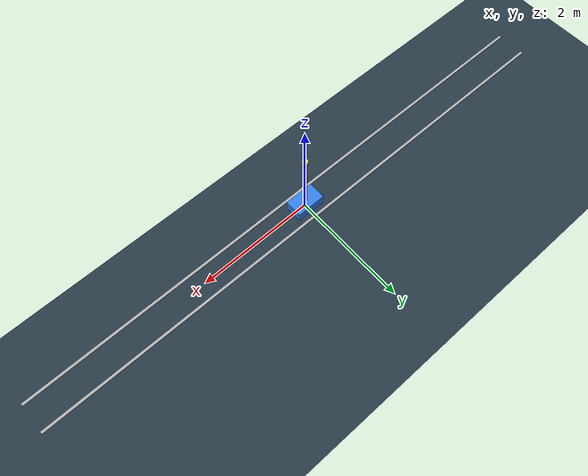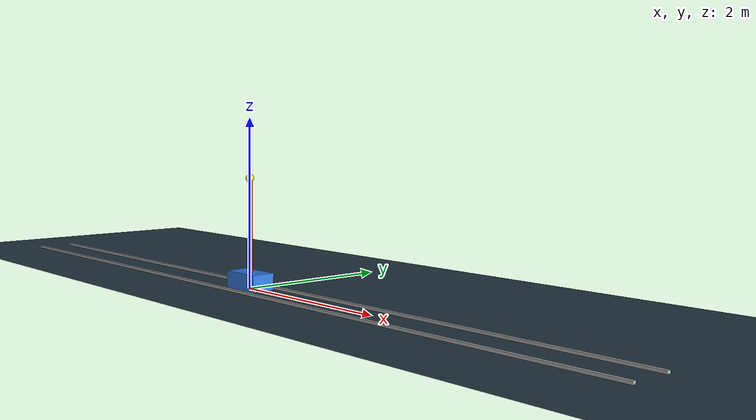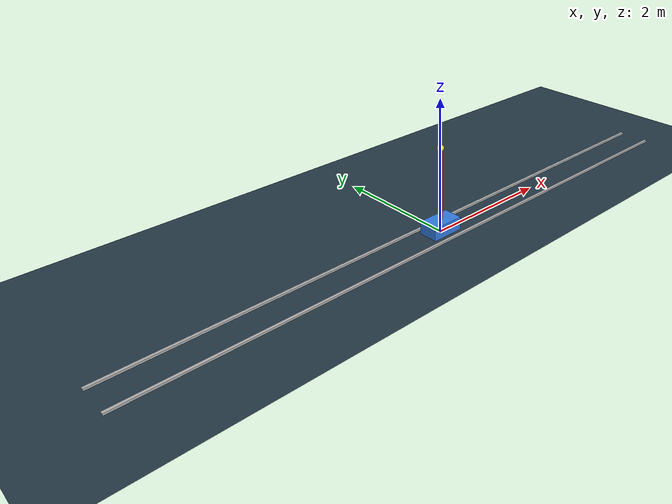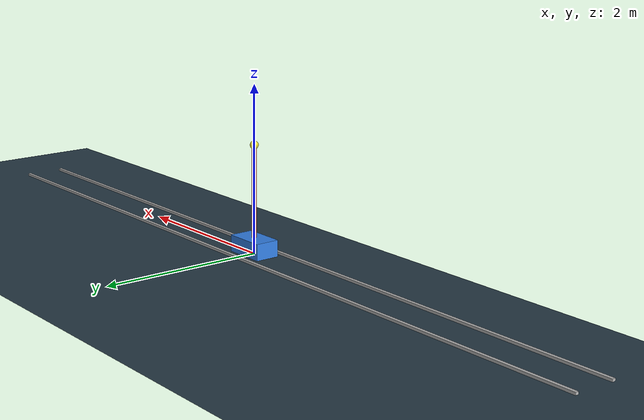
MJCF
<mujoco model="Cartpole">

  <compiler angle="radian" inertiafromgeom="true"/>

  <!-- ========= Defaults ========= -->
  <default>
    <joint armature="0" damping="0.01" frictionloss="0"/>
    <geom density="1000" friction="1 0.1 0.1" contype="0" conaffinity="0"/>
  </default>

  <!-- ========= Simulation Options ========= -->
  <option
      timestep="0.02"
      iterations="1"
      ls_iterations="4"
      solver="Newton"
      jacobian="dense"
      integrator="Euler"/>

  <!-- ========= Visual Settings ========= -->
  <visual>
    <headlight diffuse="0.8 0.8 0.8" ambient="0.3 0.3 0.3"/>
    <rgba haze="0.15 0.2 0.25 1"/>
  </visual>

  <asset>
    <texture name="grid" type="2d" builtin="checker"
             rgb1="0.2 0.3 0.35" rgb2="0.1 0.15 0.2"
             width="512" height="512"/>

    <material name="floor" texture="grid" texrepeat="6 6"/>

    <material name="cart_mat" rgba="0.2 0.5 0.9 1"/>
    <material name="pole_mat" rgba="0.9 0.3 0.2 1"/>
    <material name="rail_mat" rgba="0.7 0.7 0.7 1"/>
  </asset>

  <!-- ========= World ========= -->
  <worldbody>

    <light pos="0 0 5" dir="0 0 -1" diffuse="1 1 1"/>

    <geom name="floor"
          type="plane"
          size="20 20 0.1"
          material="floor"
          contype="0"
          conaffinity="0"/>

    <!-- Track rails -->
    <geom name="rail_left"
          type="box"
          pos="0 0.25 0"
          size="5 0.02 0.02"
          material="rail_mat"/>

    <geom name="rail_right"
          type="box"
          pos="0 -0.25 0"
          size="5 0.02 0.02"
          material="rail_mat"/>

    <!-- ========= Cart ========= -->
    <body name="cart" pos="0 0 0.1">

      <joint name="slider"
             type="slide"
             axis="1 0 0"
             range="-4.8 4.8"/>

      <geom name="cart"
            type="box"
            size="0.25 0.15 0.1"
            material="cart_mat"
            mass="1.0"/>

      <!-- pole hinge marker -->
      <geom type="sphere"
            size="0.03"
            rgba="0.1 0.1 0.1 1"/>

      <!-- ========= Pole ========= -->
      <body name="pole" pos="0 0 0">

        <joint name="hinge"
               type="hinge"
               axis="0 1 0"/>

        <geom name="pole"
              type="capsule"
              size="0.03 0.6"
              pos="0 0 0.6"
              material="pole_mat"
              mass="0.1"/>

        <!-- pole tip -->
        <geom type="sphere"
              size="0.05"
              pos="0 0 1.2"
              rgba="0.95 0.9 0.2 1"/>

      </body>
    </body>

  </worldbody>

  <!-- ========= Camera ========= -->
  <worldbody>
    <camera name="side"
            pos="0 -4 1.5"
            xyaxes="1 0 0 0 0 1"/>
  </worldbody>

  <!-- ========= Actuator ========= -->
  <actuator>
    <motor
        name="force_actuator"
        joint="slider"
        ctrlrange="-10 10"/>
  </actuator>

</mujoco>
